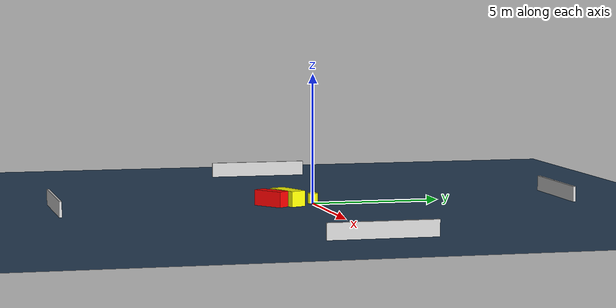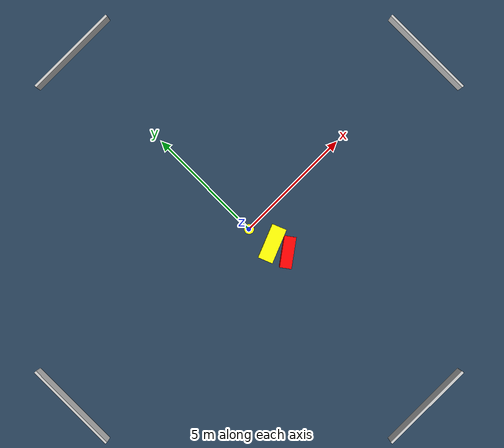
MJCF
<?xml version="1.0" ?>
<mujoco model="generated_environment">
  <option timestep="0.01" integrator="RK4" cone="elliptic"/>
  <default>
    <geom density="1"/>
  </default>
  <asset>
    <texture builtin="gradient" height="3072" name="skybox" rgb1="0.3 0.5 0.7" rgb2="0 0 0" type="skybox" width="512"/>
    <texture builtin="checker" height="300" name="groundplane" rgb1="0.2 0.3 0.4" rgb2="0.1 0.2 0.3" type="2d" width="300"/>
    <material name="groundplane" reflectance="0.2" texrepeat="5 5" texture="groundplane"/>
  </asset>
  <worldbody>
    <light dir="0 0 -1" directional="true" pos="0 0 1.5"/>
    <geom condim="3" friction="0.5 0.005 0.001" material="groundplane" name="floor" pos="0 0 0" size="0 0 0.05" type="plane"/>
    <body name="walls">
      <geom name="wall_1" condim="4" pos="-10.0 0.0 0.3" rgba="0.800000011920929 0.800000011920929 0.800000011920929 1.0" size="0.05 2.0 0.3" type="box"/>
      <geom name="wall_2" condim="4" pos="10.0 0.0 0.3" rgba="0.800000011920929 0.800000011920929 0.800000011920929 1.0" size="0.05 2.0 0.3" type="box"/>
      <geom name="wall_3" condim="4" pos="0.0 -10.0 0.3" rgba="0.800000011920929 0.800000011920929 0.800000011920929 1.0" size="2.0 0.05 0.3" type="box"/>
      <geom name="wall_4" condim="4" pos="0.0 10.0 0.3" rgba="0.800000011920929 0.800000011920929 0.800000011920929 1.0" size="2.0 0.05 0.3" type="box"/>
    </body>
    <body name="robot">
      <joint name="joint_x" type="slide" pos="0 0 0" axis="1 0 0"/>
      <joint name="joint_y" type="slide" pos="0 0 0" axis="0 1 0"/>
      <geom name="robot" type="cylinder" pos="0.0 0.0 0.2" size="0.2 0.2 0.0" mass="5.0" friction="1.0 0.005 0.0001" condim="4" rgba="1.0 1.0 0.0 1.0"/>
    </body>
    <body name="obstacle_1_movable">
      <geom name="obstacle_1_movable" condim="4" pos="0.24731427347430848 -1.062199830213235 0.3" euler="0 0 111.99692788556504" friction="0.0 0.005 0.001" rgba="1.0 1.0 0.0 1.0" size="0.3066807717224489 0.7276989490883667 0.3" type="box" mass="0.1"/>
      <joint type="free"/>
    </body>
    <body name="obstacle_2_static">
      <geom name="obstacle_2_static" condim="4" pos="0.4431630116631733 -1.7412799044739489 0.3" euler="0 0 306.11717699716036" friction="0.0 0.005 0.001" rgba="1.0 0.0 0.0 1.0" size="0.23912495750832696 0.6393191878842062 0.3" type="box"/>
    </body>
  </worldbody>
  <actuator>
    <motor name="actuator_x" joint="joint_x" gear="1" ctrlrange="-1 1"/>
    <motor name="actuator_y" joint="joint_y" gear="1" ctrlrange="-1 1"/>
  </actuator>
</mujoco>
